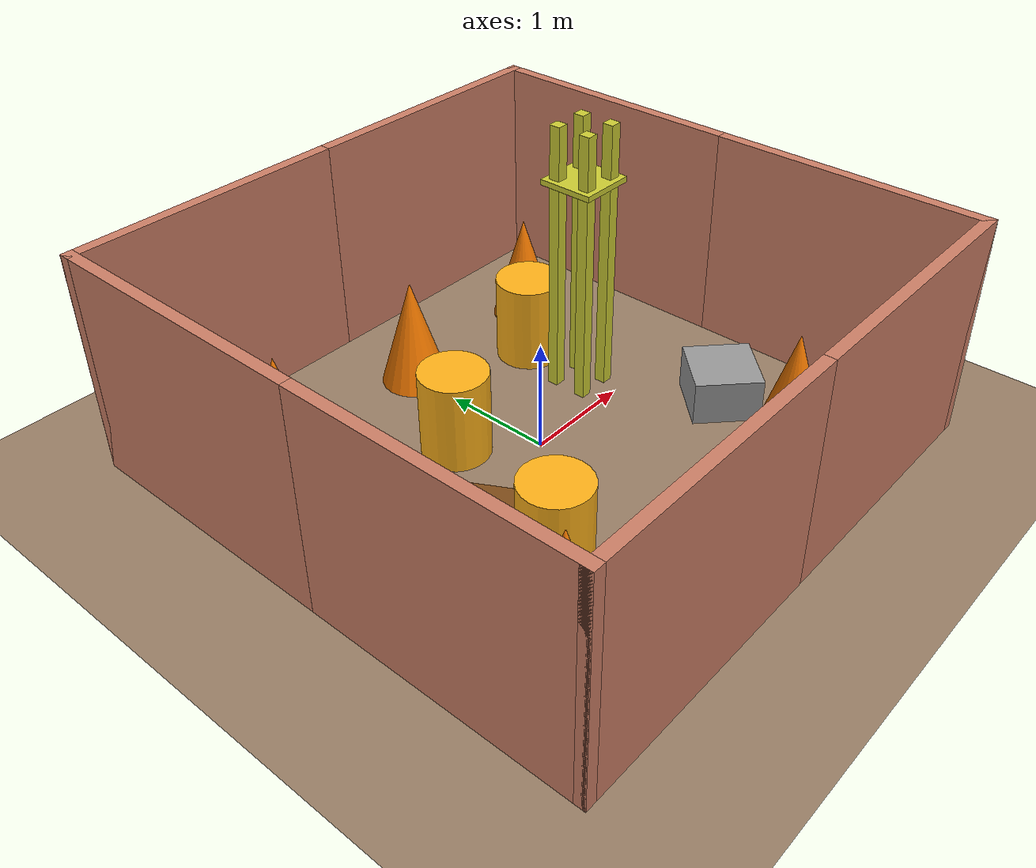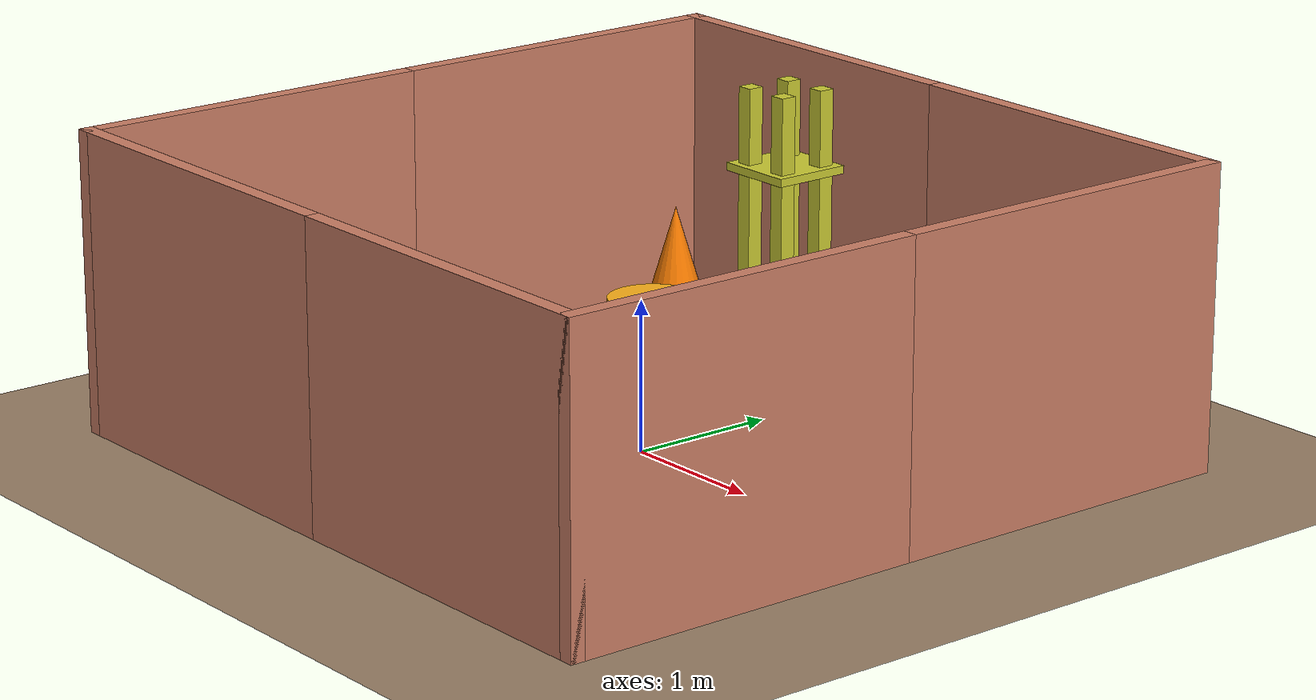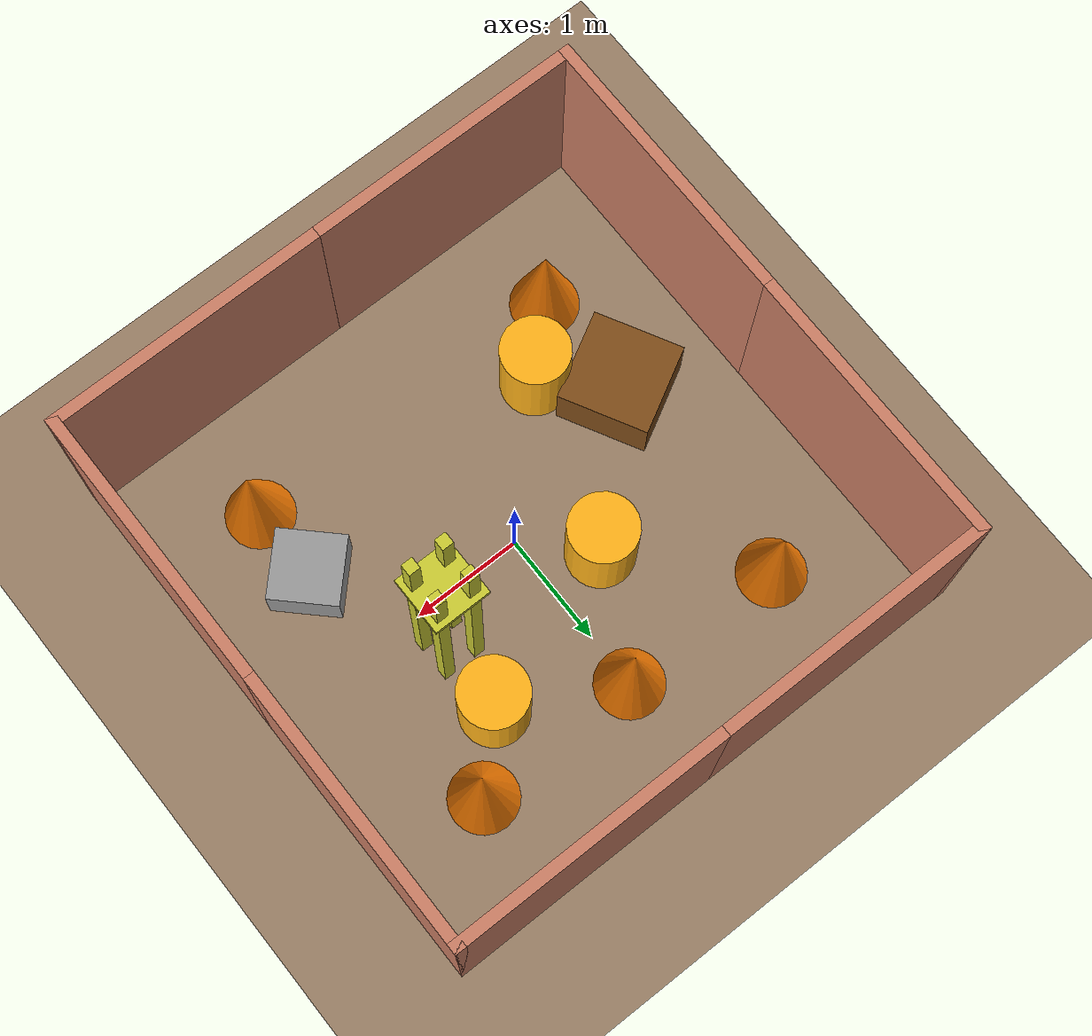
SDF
<sdf version='1.10'>
  <world name='construction_site'>
    <gravity>0 0 -9.8</gravity>
    <magnetic_field>6e-06 2.3e-05 -4.2e-05</magnetic_field>
    <atmosphere type='adiabatic'/>

    <physics type='ode'>
      <max_step_size>0.001</max_step_size>
      <real_time_factor>1</real_time_factor>
      <real_time_update_rate>1000</real_time_update_rate>
    </physics>

    <scene>
      <ambient>0.5 0.5 0.5 1</ambient>
      <background>0.7 0.8 0.9 1</background>
      <shadows>true</shadows>
    </scene>

    <!-- Ground Plane -->
    <model name='ground_plane'>
      <static>true</static>
      <link name='link'>
        <collision name='collision'>
          <geometry>
            <plane>
              <normal>0 0 1</normal>
              <size>10 10</size>
            </plane>
          </geometry>
          <surface>
            <friction>
              <ode>
                <mu>100</mu>
                <mu2>50</mu2>
              </ode>
            </friction>
          </surface>
        </collision>
        <visual name='visual'>
          <geometry>
            <plane>
              <normal>0 0 1</normal>
              <size>10 10</size>
            </plane>
          </geometry>
          <material>
            <ambient>0.6 0.5 0.4 1</ambient>
            <diffuse>0.6 0.5 0.4 1</diffuse>
          </material>
        </visual>
      </link>
      <pose>0 0 0 0 0 0</pose>
    </model>

    <!-- Sun Light -->
    <light name='sun' type='directional'>
      <pose>0 0 10 0 0 0</pose>
      <cast_shadows>true</cast_shadows>
      <intensity>1</intensity>
      <direction>-0.5 0.1 -0.9</direction>
      <diffuse>0.8 0.8 0.8 1</diffuse>
      <specular>0.2 0.2 0.2 1</specular>
    </light>

    <!-- Construction Site Walls -->
    <!-- Front Wall -->
    <model name='front_wall_1'>
      <static>true</static>
      <link name='link'>
        <collision name='collision'>
          <geometry>
            <box>
              <size>0.1 2.5 2</size>
            </box>
          </geometry>
        </collision>
        <visual name='visual'>
          <geometry>
            <box>
              <size>0.1 2.5 2</size>
            </box>
          </geometry>
          <material>
            <ambient>0.7 0.4 0.3 1</ambient>
            <diffuse>0.8 0.5 0.4 1</diffuse>
          </material>
        </visual>
      </link>
      <pose>2.45 -1.25 1 0 0 0</pose>
    </model>

    <model name='front_wall_2'>
      <static>true</static>
      <link name='link'>
        <collision name='collision'>
          <geometry>
            <box>
              <size>0.1 2.5 2</size>
            </box>
          </geometry>
        </collision>
        <visual name='visual'>
          <geometry>
            <box>
              <size>0.1 2.5 2</size>
            </box>
          </geometry>
          <material>
            <ambient>0.7 0.4 0.3 1</ambient>
            <diffuse>0.8 0.5 0.4 1</diffuse>
          </material>
        </visual>
      </link>
      <pose>2.45 1.25 1 0 0 0</pose>
    </model>

    <!-- Back Wall -->
    <model name='back_wall_1'>
      <static>true</static>
      <link name='link'>
        <collision name='collision'>
          <geometry>
            <box>
              <size>0.1 2.5 2</size>
            </box>
          </geometry>
        </collision>
        <visual name='visual'>
          <geometry>
            <box>
              <size>0.1 2.5 2</size>
            </box>
          </geometry>
          <material>
            <ambient>0.7 0.4 0.3 1</ambient>
            <diffuse>0.8 0.5 0.4 1</diffuse>
          </material>
        </visual>
      </link>
      <pose>-2.45 -1.25 1 0 0 0</pose>
    </model>

    <model name='back_wall_2'>
      <static>true</static>
      <link name='link'>
        <collision name='collision'>
          <geometry>
            <box>
              <size>0.1 2.5 2</size>
            </box>
          </geometry>
        </collision>
        <visual name='visual'>
          <geometry>
            <box>
              <size>0.1 2.5 2</size>
            </box>
          </geometry>
          <material>
            <ambient>0.7 0.4 0.3 1</ambient>
            <diffuse>0.8 0.5 0.4 1</diffuse>
          </material>
        </visual>
      </link>
      <pose>-2.45 1.25 1 0 0 0</pose>
    </model>

    <!-- Left Wall -->
    <model name='left_wall_1'>
      <static>true</static>
      <link name='link'>
        <collision name='collision'>
          <geometry>
            <box>
              <size>2.5 0.1 2</size>
            </box>
          </geometry>
        </collision>
        <visual name='visual'>
          <geometry>
            <box>
              <size>2.5 0.1 2</size>
            </box>
          </geometry>
          <material>
            <ambient>0.7 0.4 0.3 1</ambient>
            <diffuse>0.8 0.5 0.4 1</diffuse>
          </material>
        </visual>
      </link>
      <pose>-1.25 -2.45 1 0 0 0</pose>
    </model>

    <model name='left_wall_2'>
      <static>true</static>
      <link name='link'>
        <collision name='collision'>
          <geometry>
            <box>
              <size>2.5 0.1 2</size>
            </box>
          </geometry>
        </collision>
        <visual name='visual'>
          <geometry>
            <box>
              <size>2.5 0.1 2</size>
            </box>
          </geometry>
          <material>
            <ambient>0.7 0.4 0.3 1</ambient>
            <diffuse>0.8 0.5 0.4 1</diffuse>
          </material>
        </visual>
      </link>
      <pose>1.25 -2.45 1 0 0 0</pose>
    </model>

    <!-- Right Wall with entrance -->
    <model name='right_wall_1'>
      <static>true</static>
      <link name='link'>
        <collision name='collision'>
          <geometry>
            <box>
              <size>2.5 0.1 2</size>
            </box>
          </geometry>
        </collision>
        <visual name='visual'>
          <geometry>
            <box>
              <size>2.5 0.1 2</size>
            </box>
          </geometry>
          <material>
            <ambient>0.7 0.4 0.3 1</ambient>
            <diffuse>0.8 0.5 0.4 1</diffuse>
          </material>
        </visual>
      </link>
      <pose>-1.25 2.45 1 0 0 0</pose>
    </model>

    <model name='right_wall_2'>
      <static>true</static>
      <link name='link'>
        <collision name='collision'>
          <geometry>
            <box>
              <size>2.5 0.1 2</size>
            </box>
          </geometry>
        </collision>
        <visual name='visual'>
          <geometry>
            <box>
              <size>2.5 0.1 2</size>
            </box>
          </geometry>
          <material>
            <ambient>0.7 0.4 0.3 1</ambient>
            <diffuse>0.8 0.5 0.4 1</diffuse>
          </material>
        </visual>
      </link>
      <pose>1.25 2.45 1 0 0 0</pose>
    </model>

    <!-- Construction Cones for safety markers -->
    <model name='cone_1'>
      <static>true</static>
      <link name='link'>
        <collision name='collision'>
          <geometry>
            <cone>
              <radius>0.3</radius>
              <length>1.0</length>
            </cone>
          </geometry>
        </collision>
        <visual name='visual'>
          <geometry>
            <cone>
              <radius>0.3</radius>
              <length>1.0</length>
            </cone>
          </geometry>
          <material>
            <ambient>1 0.4 0 1</ambient>
            <diffuse>1 0.5 0 1</diffuse>
          </material>
        </visual>
      </link>
      <pose>-1.5 1.5 0.5 0 0 0</pose>
    </model>

    <model name='cone_2'>
      <static>true</static>
      <link name='link'>
        <collision name='collision'>
          <geometry>
            <cone>
              <radius>0.3</radius>
              <length>1.0</length>
            </cone>
          </geometry>
        </collision>
        <visual name='visual'>
          <geometry>
            <cone>
              <radius>0.3</radius>
              <length>1.0</length>
            </cone>
          </geometry>
          <material>
            <ambient>1 0.4 0 1</ambient>
            <diffuse>1 0.5 0 1</diffuse>
          </material>
        </visual>
      </link>
      <pose>-1.5 -1.5 0.5 0 0 0</pose>
    </model>

    <model name='cone_3'>
      <static>true</static>
      <link name='link'>
        <collision name='collision'>
          <geometry>
            <cone>
              <radius>0.3</radius>
              <length>1.0</length>
            </cone>
          </geometry>
        </collision>
        <visual name='visual'>
          <geometry>
            <cone>
              <radius>0.3</radius>
              <length>1.0</length>
            </cone>
          </geometry>
          <material>
            <ambient>1 0.4 0 1</ambient>
            <diffuse>1 0.5 0 1</diffuse>
          </material>
        </visual>
      </link>
      <pose>1.5 1.5 0.5 0 0 0</pose>
    </model>

    <model name='cone_4'>
      <static>true</static>
      <link name='link'>
        <collision name='collision'>
          <geometry>
            <cone>
              <radius>0.3</radius>
              <length>1.0</length>
            </cone>
          </geometry>
        </collision>
        <visual name='visual'>
          <geometry>
            <cone>
              <radius>0.3</radius>
              <length>1.0</length>
            </cone>
          </geometry>
          <material>
            <ambient>1 0.4 0 1</ambient>
            <diffuse>1 0.5 0 1</diffuse>
          </material>
        </visual>
      </link>
      <pose>1.5 -1.5 0.5 0 0 0</pose>
    </model>

    <model name='cone_5'>
      <static>true</static>
      <link name='link'>
        <collision name='collision'>
          <geometry>
            <cone>
              <radius>0.3</radius>
              <length>1.0</length>
            </cone>
          </geometry>
        </collision>
        <visual name='visual'>
          <geometry>
            <cone>
              <radius>0.3</radius>
              <length>1.0</length>
            </cone>
          </geometry>
          <material>
            <ambient>1 0.4 0 1</ambient>
            <diffuse>1 0.5 0 1</diffuse>
          </material>
        </visual>
      </link>
      <pose>0 1.5 0.5 0 0 0</pose>
    </model>

    <!-- Construction Barrels/Obstacles -->
    <model name='barrel_1'>
      <static>true</static>
      <link name='link'>
        <collision name='collision'>
          <geometry>
            <cylinder>
              <radius>0.3</radius>
              <length>0.8</length>
            </cylinder>
          </geometry>
        </collision>
        <visual name='visual'>
          <geometry>
            <cylinder>
              <radius>0.3</radius>
              <length>0.8</length>
            </cylinder>
          </geometry>
          <material>
            <ambient>1 0.6 0 1</ambient>
            <diffuse>1 0.7 0.1 1</diffuse>
          </material>
        </visual>
      </link>
      <pose>-1 -1 0.4 0 0 0</pose>
    </model>

    <model name='barrel_2'>
      <static>true</static>
      <link name='link'>
        <collision name='collision'>
          <geometry>
            <cylinder>
              <radius>0.3</radius>
              <length>0.8</length>
            </cylinder>
          </geometry>
        </collision>
        <visual name='visual'>
          <geometry>
            <cylinder>
              <radius>0.3</radius>
              <length>0.8</length>
            </cylinder>
          </geometry>
          <material>
            <ambient>1 0.6 0 1</ambient>
            <diffuse>1 0.7 0.1 1</diffuse>
          </material>
        </visual>
      </link>
      <pose>1 1 0.4 0 0 0</pose>
    </model>

    <model name='barrel_3'>
      <static>true</static>
      <link name='link'>
        <collision name='collision'>
          <geometry>
            <cylinder>
              <radius>0.3</radius>
              <length>0.8</length>
            </cylinder>
          </geometry>
        </collision>
        <visual name='visual'>
          <geometry>
            <cylinder>
              <radius>0.3</radius>
              <length>0.8</length>
            </cylinder>
          </geometry>
          <material>
            <ambient>1 0.6 0 1</ambient>
            <diffuse>1 0.7 0.1 1</diffuse>
          </material>
        </visual>
      </link>
      <pose>-0.5 0.5 0.4 0 0 0</pose>
    </model>

    <!-- Piles of materials (using boxes as placeholders) -->
    <model name='material_pile_1'>
      <static>true</static>
      <link name='link'>
        <collision name='collision'>
          <geometry>
            <box>
              <size>0.8 0.8 0.5</size>
            </box>
          </geometry>
        </collision>
        <visual name='visual'>
          <geometry>
            <box>
              <size>0.8 0.8 0.5</size>
            </box>
          </geometry>
          <material>
            <ambient>0.5 0.3 0.1 1</ambient>
            <diffuse>0.5 0.3 0.1 1</diffuse>
          </material>
        </visual>
      </link>
      <pose>-1.5 -0.5 0.25 0 0 0.5</pose>
    </model>

    <model name='material_pile_2'>
      <static>true</static>
      <link name='link'>
        <collision name='collision'>
          <geometry>
            <box>
              <size>0.6 0.6 0.4</size>
            </box>
          </geometry>
        </collision>
        <visual name='visual'>
          <geometry>
            <box>
              <size>0.6 0.6 0.4</size>
            </box>
          </geometry>
          <material>
            <ambient>0.6 0.6 0.6 1</ambient>
            <diffuse>0.6 0.6 0.6 1</diffuse>
          </material>
        </visual>
      </link>
      <pose>1.5 -0.8 0.2 0 0 0.8</pose>
    </model>

    <!-- Scaffolding-like structures using boxes -->
    <model name='scaffold_1'>
      <static>true</static>
      <link name='link'>
        <collision name='collision'>
          <geometry>
            <box>
              <size>0.1 0.1 2.5</size>
            </box>
          </geometry>
        </collision>
        <visual name='visual'>
          <geometry>
            <box>
              <size>0.1 0.1 2.5</size>
            </box>
          </geometry>
          <material>
            <ambient>0.7 0.7 0.1 1</ambient>
            <diffuse>0.8 0.8 0.2 1</diffuse>
          </material>
        </visual>
      </link>
      <pose>0.8 0.5 1.25 0 0 0</pose>
    </model>

    <model name='scaffold_2'>
      <static>true</static>
      <link name='link'>
        <collision name='collision'>
          <geometry>
            <box>
              <size>0.1 0.1 2.5</size>
            </box>
          </geometry>
        </collision>
        <visual name='visual'>
          <geometry>
            <box>
              <size>0.1 0.1 2.5</size>
            </box>
          </geometry>
          <material>
            <ambient>0.7 0.7 0.1 1</ambient>
            <diffuse>0.8 0.8 0.2 1</diffuse>
          </material>
        </visual>
      </link>
      <pose>0.8 0.2 1.25 0 0 0</pose>
    </model>

    <model name='scaffold_3'>
      <static>true</static>
      <link name='link'>
        <collision name='collision'>
          <geometry>
            <box>
              <size>0.1 0.1 2.5</size>
            </box>
          </geometry>
        </collision>
        <visual name='visual'>
          <geometry>
            <box>
              <size>0.1 0.1 2.5</size>
            </box>
          </geometry>
          <material>
            <ambient>0.7 0.7 0.1 1</ambient>
            <diffuse>0.8 0.8 0.2 1</diffuse>
          </material>
        </visual>
      </link>
      <pose>1.1 0.5 1.25 0 0 0</pose>
    </model>

    <model name='scaffold_4'>
      <static>true</static>
      <link name='link'>
        <collision name='collision'>
          <geometry>
            <box>
              <size>0.1 0.1 2.5</size>
            </box>
          </geometry>
        </collision>
        <visual name='visual'>
          <geometry>
            <box>
              <size>0.1 0.1 2.5</size>
            </box>
          </geometry>
          <material>
            <ambient>0.7 0.7 0.1 1</ambient>
            <diffuse>0.8 0.8 0.2 1</diffuse>
          </material>
        </visual>
      </link>
      <pose>1.1 0.2 1.25 0 0 0</pose>
    </model>

    <!-- Horizontal scaffold platform -->
    <model name='scaffold_platform'>
      <static>true</static>
      <link name='link'>
        <collision name='collision'>
          <geometry>
            <box>
              <size>0.5 0.5 0.05</size>
            </box>
          </geometry>
        </collision>
        <visual name='visual'>
          <geometry>
            <box>
              <size>0.5 0.5 0.05</size>
            </box>
          </geometry>
          <material>
            <ambient>0.7 0.7 0.1 1</ambient>
            <diffuse>0.8 0.8 0.2 1</diffuse>
          </material>
        </visual>
      </link>
      <pose>0.95 0.35 2 0 0 0</pose>
    </model>

    <!-- Additional lighting for construction site -->
    <light name='construction_light_1' type='point'>
      <pose>-1 -1 3 0 0 0</pose>
      <cast_shadows>false</cast_shadows>
      <intensity>0.8</intensity>
      <diffuse>1 0.9 0.7 1</diffuse>
      <specular>0.5 0.5 0.5 1</specular>
      <attenuation>
        <range>10</range>
        <linear>0.1</linear>
        <constant>0.2</constant>
        <quadratic>0.01</quadratic>
      </attenuation>
    </light>

    <light name='construction_light_2' type='point'>
      <pose>1 1 3 0 0 0</pose>
      <cast_shadows>false</cast_shadows>
      <intensity>0.8</intensity>
      <diffuse>1 0.9 0.7 1</diffuse>
      <specular>0.5 0.5 0.5 1</specular>
      <attenuation>
        <range>10</range>
        <linear>0.1</linear>
        <constant>0.2</constant>
        <quadratic>0.01</quadratic>
      </attenuation>
    </light>

    <gui fullscreen='false'>
      <camera name='user_camera'>
        <pose>-10 -10 8 0 0.5 0.78</pose>
        <view_controller>orbit</view_controller>
        <projection_type>perspective</projection_type>
      </camera>
    </gui>
  </world>
</sdf>
